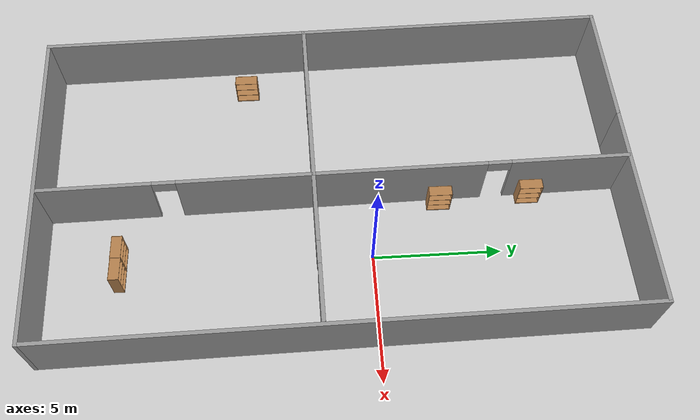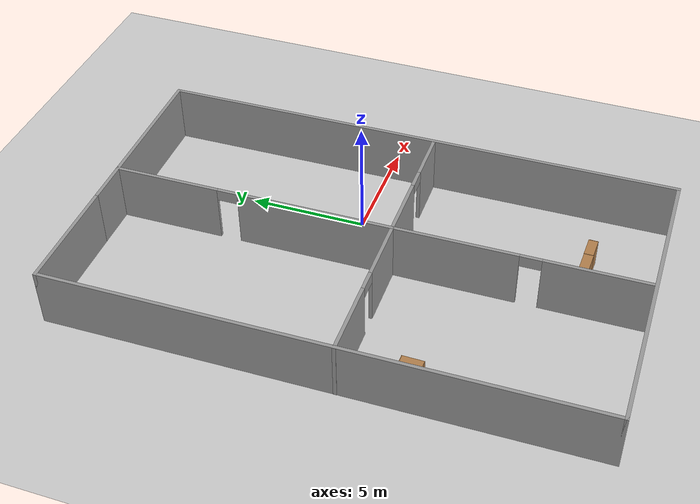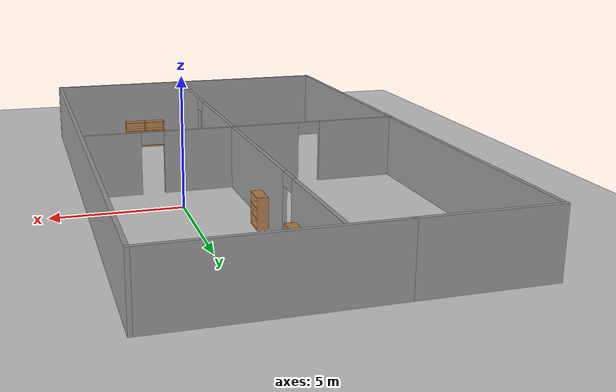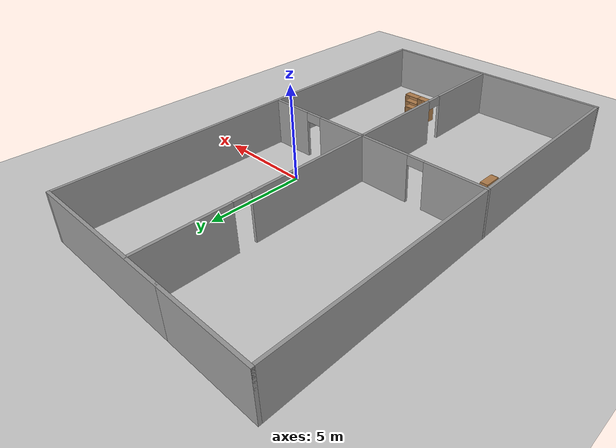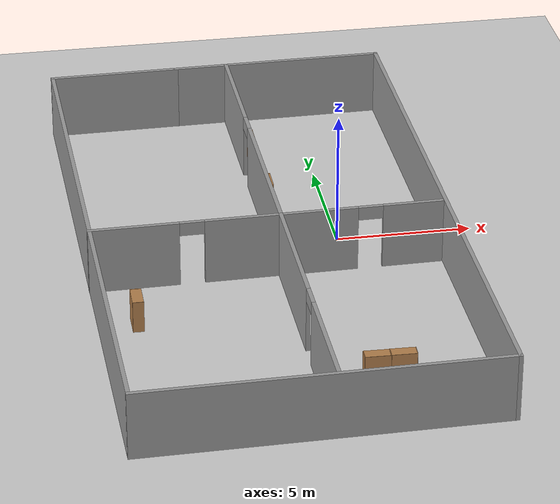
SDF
<sdf version="1.7">
 <world name="default">
  <light name="sun" type="directional">
   <pose>0 0 10 0 -0 0</pose>
   <diffuse>0.8 0.8 0.8 1</diffuse>
   <specular>0.2 0.2 0.2 1</specular>
   <attenuation>
    <range>1000</range>
    <constant>0.9</constant>
    <linear>0.01</linear>
    <quadratic>0.001</quadratic>
   </attenuation>
   <direction>-0.5 0.1 -0.9</direction>
   <spot><inner_angle>0</inner_angle><outer_angle>0</outer_angle><falloff>0</falloff></spot>
  </light>
  <model name="ground_plane">
   <static>1</static>
   <link name="link">
    <collision name="collision">
     <geometry><plane><normal>0 0 1</normal><size>100 100</size></plane></geometry>
     <surface>
      <contact><collide_bitmask>65535</collide_bitmask></contact>
      <friction><ode><mu>100</mu><mu2>50</mu2></ode></friction>
     </surface>
    </collision>
    <visual name="visual">
     <cast_shadows>0</cast_shadows>
     <geometry><plane><normal>0 0 1</normal><size>100 100</size></plane></geometry>
     <material>
      <script><uri>file://media/materials/scripts/gazebo.material</uri><name>Gazebo/Grey</name></script>
     </material>
    </visual>
   </link>
  </model>
  <gravity>0 0 -9.8</gravity>
  <magnetic_field>6e-06 2.3e-05 -4.2e-05</magnetic_field>
  <atmosphere type="adiabatic"/>
  <physics type="ode">
   <max_step_size>0.001</max_step_size>
   <real_time_factor>1</real_time_factor>
   <real_time_update_rate>1000</real_time_update_rate>
  </physics>
  <scene><ambient>0.4 0.4 0.4 1</ambient><background>0.7 0.7 0.7 1</background><shadows>1</shadows></scene>
  <spherical_coordinates>
   <surface_model>EARTH_WGS84</surface_model>
   <latitude_deg>0</latitude_deg>
   <longitude_deg>0</longitude_deg>
   <elevation>0</elevation>
   <heading_deg>0</heading_deg>
  </spherical_coordinates>
  <model name="world_test">
   <pose>-2.88552 -1.34444 0 0 0 -1.55738</pose>
   <link name="Wall_10">
    <collision name="Wall_10_Collision">
     <geometry><box><size>8.15 0.15 2.5</size></box></geometry>
     <pose>0 0 1.25 0 -0 0</pose>
    </collision>
    <visual name="Wall_10_Visual">
     <pose>0 0 1.25 0 -0 0</pose>
     <geometry><box><size>8.15 0.15 2.5</size></box></geometry>
     <material>
      <script><uri>file://media/materials/scripts/gazebo.material</uri><name>Gazebo/Grey</name></script>
      <ambient>1 1 1 1</ambient>
     </material>
     <meta><layer>0</layer></meta>
    </visual>
    <pose>-11.3 2.42918 0 0 -0 -1.5708</pose>
   </link>
   <link name="Wall_18">
    <pose>-5.24626 0.420819 0 0 -0 0</pose>
    <visual name="Wall_18_Visual_0">
     <pose>-3.81603 0 1.25 0 -0 0</pose>
     <geometry><box><size>4.61795 0.15 2.5</size></box></geometry>
     <material>
      <script><uri>file://media/materials/scripts/gazebo.material</uri><name>Gazebo/Grey</name></script>
      <ambient>1 1 1 1</ambient>
     </material>
     <meta><layer>0</layer></meta>
    </visual>
    <collision name="Wall_18_Collision_0">
     <geometry><box><size>4.61795 0.15 2.5</size></box></geometry>
     <pose>-3.81603 0 1.25 0 -0 0</pose>
    </collision>
    <visual name="Wall_18_Visual_1">
     <pose>2.75897 0 1.25 0 -0 0</pose>
     <geometry><box><size>6.73205 0.15 2.5</size></box></geometry>
     <material>
      <script><uri>file://media/materials/scripts/gazebo.material</uri><name>Gazebo/Grey</name></script>
      <ambient>1 1 1 1</ambient>
     </material>
     <meta><layer>0</layer></meta>
    </visual>
    <collision name="Wall_18_Collision_1">
     <geometry><box><size>6.73205 0.15 2.5</size></box></geometry>
     <pose>2.75897 0 1.25 0 -0 0</pose>
    </collision>
    <visual name="Wall_18_Visual_2">
     <pose>-1.05705 0 2.25 0 -0 0</pose>
     <geometry><box><size>0.9 0.15 0.5</size></box></geometry>
     <material>
      <script><uri>file://media/materials/scripts/gazebo.material</uri><name>Gazebo/Grey</name></script>
      <ambient>1 1 1 1</ambient>
     </material>
     <meta><layer>0</layer></meta>
    </visual>
    <collision name="Wall_18_Collision_2">
     <geometry><box><size>0.9 0.15 0.5</size></box></geometry>
     <pose>-1.05705 0 2.25 0 -0 0</pose>
    </collision>
   </link>
   <link name="Wall_19">
    <pose>0.803742 3.34582 0 0 -0 1.5708</pose>
    <visual name="Wall_19_Visual_0">
     <pose>-1.55911 0 1.25 0 -0 0</pose>
     <geometry><box><size>2.88178 0.15 2.5</size></box></geometry>
     <material>
      <script><uri>file://media/materials/scripts/gazebo.material</uri><name>Gazebo/Grey</name></script>
      <ambient>1 1 1 1</ambient>
     </material>
     <meta><layer>0</layer></meta>
    </visual>
    <collision name="Wall_19_Collision_0">
     <geometry><box><size>2.88178 0.15 2.5</size></box></geometry>
     <pose>-1.55911 0 1.25 0 -0 0</pose>
    </collision>
    <visual name="Wall_19_Visual_1">
     <pose>1.89089 0 1.25 0 -0 0</pose>
     <geometry><box><size>2.21822 0.15 2.5</size></box></geometry>
     <material>
      <script><uri>file://media/materials/scripts/gazebo.material</uri><name>Gazebo/Grey</name></script>
      <ambient>1 1 1 1</ambient>
     </material>
     <meta><layer>0</layer></meta>
    </visual>
    <collision name="Wall_19_Collision_1">
     <geometry><box><size>2.21822 0.15 2.5</size></box></geometry>
     <pose>1.89089 0 1.25 0 -0 0</pose>
    </collision>
    <visual name="Wall_19_Visual_2">
     <pose>0.331783 0 2.25 0 -0 0</pose>
     <geometry><box><size>0.9 0.15 0.5</size></box></geometry>
     <material>
      <script><uri>file://media/materials/scripts/gazebo.material</uri><name>Gazebo/Grey</name></script>
      <ambient>1 1 1 1</ambient>
     </material>
     <meta><layer>0</layer></meta>
    </visual>
    <collision name="Wall_19_Collision_2">
     <geometry><box><size>0.9 0.15 0.5</size></box></geometry>
     <pose>0.331783 0 2.25 0 -0 0</pose>
    </collision>
   </link>
   <link name="Wall_21">
    <pose>0.803742 -3.00418 0 0 -0 -1.5708</pose>
    <visual name="Wall_21_Visual_0">
     <pose>-2.08899 0 1.25 0 -0 0</pose>
     <geometry><box><size>2.82202 0.15 2.5</size></box></geometry>
     <material>
      <script><uri>file://media/materials/scripts/gazebo.material</uri><name>Gazebo/Grey</name></script>
      <ambient>1 1 1 1</ambient>
     </material>
     <meta><layer>0</layer></meta>
    </visual>
    <collision name="Wall_21_Collision_0">
     <geometry><box><size>2.82202 0.15 2.5</size></box></geometry>
     <pose>-2.08899 0 1.25 0 -0 0</pose>
    </collision>
    <visual name="Wall_21_Visual_1">
     <pose>1.86101 0 1.25 0 -0 0</pose>
     <geometry><box><size>3.27798 0.15 2.5</size></box></geometry>
     <material>
      <script><uri>file://media/materials/scripts/gazebo.material</uri><name>Gazebo/Grey</name></script>
      <ambient>1 1 1 1</ambient>
     </material>
     <meta><layer>0</layer></meta>
    </visual>
    <collision name="Wall_21_Collision_1">
     <geometry><box><size>3.27798 0.15 2.5</size></box></geometry>
     <pose>1.86101 0 1.25 0 -0 0</pose>
    </collision>
    <visual name="Wall_21_Visual_2">
     <pose>-0.227983 0 2.25 0 -0 0</pose>
     <geometry><box><size>0.9 0.15 0.5</size></box></geometry>
     <material>
      <script><uri>file://media/materials/scripts/gazebo.material</uri><name>Gazebo/Grey</name></script>
      <ambient>1 1 1 1</ambient>
     </material>
     <meta><layer>0</layer></meta>
    </visual>
    <collision name="Wall_21_Collision_2">
     <geometry><box><size>0.9 0.15 0.5</size></box></geometry>
     <pose>-0.227983 0 2.25 0 -0 0</pose>
    </collision>
   </link>
   <link name="Wall_23">
    <pose>5.97874 0.420819 0 0 -0 0</pose>
    <visual name="Wall_23_Visual_0">
     <pose>-2.61658 0 1.25 0 -0 0</pose>
     <geometry><box><size>5.26685 0.15 2.5</size></box></geometry>
     <material>
      <script><uri>file://media/materials/scripts/gazebo.material</uri><name>Gazebo/Grey</name></script>
      <ambient>1 1 1 1</ambient>
     </material>
     <meta><layer>0</layer></meta>
    </visual>
    <collision name="Wall_23_Collision_0">
     <geometry><box><size>5.26685 0.15 2.5</size></box></geometry>
     <pose>-2.61658 0 1.25 0 -0 0</pose>
    </collision>
    <visual name="Wall_23_Visual_1">
     <pose>3.08342 0 1.25 0 -0 0</pose>
     <geometry><box><size>4.33315 0.15 2.5</size></box></geometry>
     <material>
      <script><uri>file://media/materials/scripts/gazebo.material</uri><name>Gazebo/Grey</name></script>
      <ambient>1 1 1 1</ambient>
     </material>
     <meta><layer>0</layer></meta>
    </visual>
    <collision name="Wall_23_Collision_1">
     <geometry><box><size>4.33315 0.15 2.5</size></box></geometry>
     <pose>3.08342 0 1.25 0 -0 0</pose>
    </collision>
    <visual name="Wall_23_Visual_2">
     <pose>0.466847 0 2.25 0 -0 0</pose>
     <geometry><box><size>0.9 0.15 0.5</size></box></geometry>
     <material>
      <script><uri>file://media/materials/scripts/gazebo.material</uri><name>Gazebo/Grey</name></script>
      <ambient>1 1 1 1</ambient>
     </material>
     <meta><layer>0</layer></meta>
    </visual>
    <collision name="Wall_23_Collision_2">
     <geometry><box><size>0.9 0.15 0.5</size></box></geometry>
     <pose>0.466847 0 2.25 0 -0 0</pose>
    </collision>
   </link>
   <link name="Wall_6">
    <collision name="Wall_6_Collision">
     <geometry><box><size>5 0.15 2.5</size></box></geometry>
     <pose>0 0 1.25 0 -0 0</pose>
    </collision>
    <visual name="Wall_6_Visual">
     <pose>0 0 1.25 0 -0 0</pose>
     <geometry><box><size>5 0.15 2.5</size></box></geometry>
     <material>
      <script><uri>file://media/materials/scripts/gazebo.material</uri><name>Gazebo/Grey</name></script>
      <ambient>1 1 1 1</ambient>
     </material>
     <meta><layer>0</layer></meta>
    </visual>
    <pose>-11.3 -3.99582 0 0 -0 -1.5708</pose>
   </link>
   <link name="Wall_7">
    <collision name="Wall_7_Collision">
     <geometry><box><size>22.75 0.15 2.5</size></box></geometry>
     <pose>0 0 1.25 0 -0 0</pose>
    </collision>
    <visual name="Wall_7_Visual">
     <pose>0 0 1.25 0 -0 0</pose>
     <geometry><box><size>22.75 0.15 2.5</size></box></geometry>
     <material>
      <script><uri>file://media/materials/scripts/gazebo.material</uri><name>Gazebo/Grey</name></script>
      <ambient>1 1 1 1</ambient>
     </material>
     <meta><layer>0</layer></meta>
    </visual>
    <pose>0 -6.42082 0 0 -0 0</pose>
   </link>
   <link name="Wall_8">
    <collision name="Wall_8_Collision">
     <geometry><box><size>13 0.15 2.5</size></box></geometry>
     <pose>0 0 1.25 0 -0 0</pose>
    </collision>
    <visual name="Wall_8_Visual">
     <pose>0 0 1.25 0 -0 0</pose>
     <geometry><box><size>13 0.15 2.5</size></box></geometry>
     <material>
      <script><uri>file://media/materials/scripts/gazebo.material</uri><name>Gazebo/Grey</name></script>
      <ambient>1 1 1 1</ambient>
     </material>
     <meta><layer>0</layer></meta>
    </visual>
    <pose>11.3 0.004181 0 0 -0 1.5708</pose>
   </link>
   <link name="Wall_9">
    <collision name="Wall_9_Collision">
     <geometry><box><size>22.75 0.15 2.5</size></box></geometry>
     <pose>0 0 1.25 0 -0 0</pose>
    </collision>
    <visual name="Wall_9_Visual">
     <pose>0 0 1.25 0 -0 0</pose>
     <geometry><box><size>22.75 0.15 2.5</size></box></geometry>
     <material>
      <script><uri>file://media/materials/scripts/gazebo.material</uri><name>Gazebo/Grey</name></script>
      <ambient>1 1 1 1</ambient>
     </material>
     <meta><layer>0</layer></meta>
    </visual>
    <pose>0 6.42918 0 0 -0 3.14159</pose>
   </link>
   <static>1</static>
  </model>
  <model name="bookshelf">
   <static>1</static>
   <link name="link">
    <inertial><mass>1</mass></inertial>
    <collision name="back">
     <pose>0 0.005 0.6 0 -0 0</pose>
     <geometry><box><size>0.9 0.01 1.2</size></box></geometry>
    </collision>
    <visual name="visual1">
     <pose>0 0.005 0.6 0 -0 0</pose>
     <geometry><box><size>0.9 0.01 1.2</size></box></geometry>
     <material>
      <script><uri>file://media/materials/scripts/gazebo.material</uri><name>Gazebo/Wood</name></script>
     </material>
    </visual>
    <collision name="left_side">
     <pose>0.45 -0.195 0.6 0 -0 0</pose>
     <geometry><box><size>0.02 0.4 1.2</size></box></geometry>
    </collision>
    <visual name="visual2">
     <pose>0.45 -0.195 0.6 0 -0 0</pose>
     <geometry><box><size>0.02 0.4 1.2</size></box></geometry>
     <material>
      <script><uri>file://media/materials/scripts/gazebo.material</uri><name>Gazebo/Wood</name></script>
     </material>
    </visual>
    <collision name="right_side">
     <pose>-0.45 -0.195 0.6 0 -0 0</pose>
     <geometry><box><size>0.02 0.4 1.2</size></box></geometry>
    </collision>
    <visual name="visual3">
     <pose>-0.45 -0.195 0.6 0 -0 0</pose>
     <geometry><box><size>0.02 0.4 1.2</size></box></geometry>
     <material>
      <script><uri>file://media/materials/scripts/gazebo.material</uri><name>Gazebo/Wood</name></script>
     </material>
    </visual>
    <collision name="bottom">
     <pose>0 -0.195 0.03 0 -0 0</pose>
     <geometry><box><size>0.88 0.4 0.06</size></box></geometry>
    </collision>
    <visual name="visual4">
     <pose>0 -0.195 0.03 0 -0 0</pose>
     <geometry><box><size>0.88 0.4 0.06</size></box></geometry>
     <material>
      <script><uri>file://media/materials/scripts/gazebo.material</uri><name>Gazebo/Wood</name></script>
     </material>
    </visual>
    <collision name="top">
     <pose>0 -0.195 1.19 0 -0 0</pose>
     <geometry><box><size>0.88 0.4 0.02</size></box></geometry>
    </collision>
    <visual name="visual5">
     <pose>0 -0.195 1.19 0 -0 0</pose>
     <geometry><box><size>0.88 0.4 0.02</size></box></geometry>
     <material>
      <script><uri>file://media/materials/scripts/gazebo.material</uri><name>Gazebo/Wood</name></script>
     </material>
    </visual>
    <collision name="low_shelf">
     <pose>0 -0.195 0.43 0 -0 0</pose>
     <geometry><box><size>0.88 0.4 0.02</size></box></geometry>
    </collision>
    <visual name="visual6">
     <pose>0 -0.195 0.43 0 -0 0</pose>
     <geometry><box><size>0.88 0.4 0.02</size></box></geometry>
     <material>
      <script><uri>file://media/materials/scripts/gazebo.material</uri><name>Gazebo/Wood</name></script>
     </material>
    </visual>
    <collision name="high_shelf">
     <pose>0 -0.195 0.8 0 -0 0</pose>
     <geometry><box><size>0.88 0.4 0.02</size></box></geometry>
    </collision>
    <visual name="visual7">
     <pose>0 -0.195 0.8 0 -0 0</pose>
     <geometry><box><size>0.88 0.4 0.02</size></box></geometry>
     <material>
      <script><uri>file://media/materials/scripts/gazebo.material</uri><name>Gazebo/Wood</name></script>
     </material>
    </visual>
   </link>
   <pose>-2.36099 2.78032 0 0 -0 1.56146</pose>
  </model>
  <model name="bookshelf_clone">
   <static>1</static>
   <link name="link">
    <inertial><mass>1</mass></inertial>
    <collision name="back">
     <pose>0 0.005 0.6 0 -0 0</pose>
     <geometry><box><size>0.9 0.01 1.2</size></box></geometry>
    </collision>
    <visual name="visual1">
     <pose>0 0.005 0.6 0 -0 0</pose>
     <geometry><box><size>0.9 0.01 1.2</size></box></geometry>
     <material>
      <script><uri>file://media/materials/scripts/gazebo.material</uri><name>Gazebo/Wood</name></script>
     </material>
    </visual>
    <collision name="left_side">
     <pose>0.45 -0.195 0.6 0 -0 0</pose>
     <geometry><box><size>0.02 0.4 1.2</size></box></geometry>
    </collision>
    <visual name="visual2">
     <pose>0.45 -0.195 0.6 0 -0 0</pose>
     <geometry><box><size>0.02 0.4 1.2</size></box></geometry>
     <material>
      <script><uri>file://media/materials/scripts/gazebo.material</uri><name>Gazebo/Wood</name></script>
     </material>
    </visual>
    <collision name="right_side">
     <pose>-0.45 -0.195 0.6 0 -0 0</pose>
     <geometry><box><size>0.02 0.4 1.2</size></box></geometry>
    </collision>
    <visual name="visual3">
     <pose>-0.45 -0.195 0.6 0 -0 0</pose>
     <geometry><box><size>0.02 0.4 1.2</size></box></geometry>
     <material>
      <script><uri>file://media/materials/scripts/gazebo.material</uri><name>Gazebo/Wood</name></script>
     </material>
    </visual>
    <collision name="bottom">
     <pose>0 -0.195 0.03 0 -0 0</pose>
     <geometry><box><size>0.88 0.4 0.06</size></box></geometry>
    </collision>
    <visual name="visual4">
     <pose>0 -0.195 0.03 0 -0 0</pose>
     <geometry><box><size>0.88 0.4 0.06</size></box></geometry>
     <material>
      <script><uri>file://media/materials/scripts/gazebo.material</uri><name>Gazebo/Wood</name></script>
     </material>
    </visual>
    <collision name="top">
     <pose>0 -0.195 1.19 0 -0 0</pose>
     <geometry><box><size>0.88 0.4 0.02</size></box></geometry>
    </collision>
    <visual name="visual5">
     <pose>0 -0.195 1.19 0 -0 0</pose>
     <geometry><box><size>0.88 0.4 0.02</size></box></geometry>
     <material>
      <script><uri>file://media/materials/scripts/gazebo.material</uri><name>Gazebo/Wood</name></script>
     </material>
    </visual>
    <collision name="low_shelf">
     <pose>0 -0.195 0.43 0 -0 0</pose>
     <geometry><box><size>0.88 0.4 0.02</size></box></geometry>
    </collision>
    <visual name="visual6">
     <pose>0 -0.195 0.43 0 -0 0</pose>
     <geometry><box><size>0.88 0.4 0.02</size></box></geometry>
     <material>
      <script><uri>file://media/materials/scripts/gazebo.material</uri><name>Gazebo/Wood</name></script>
     </material>
    </visual>
    <collision name="high_shelf">
     <pose>0 -0.195 0.8 0 -0 0</pose>
     <geometry><box><size>0.88 0.4 0.02</size></box></geometry>
    </collision>
    <visual name="visual7">
     <pose>0 -0.195 0.8 0 -0 0</pose>
     <geometry><box><size>0.88 0.4 0.02</size></box></geometry>
     <material>
      <script><uri>file://media/materials/scripts/gazebo.material</uri><name>Gazebo/Wood</name></script>
     </material>
    </visual>
   </link>
   <pose>-2.46567 6.36199 0 0 -0 1.56146</pose>
  </model>
  <model name="bookshelf_clone_0">
   <static>1</static>
   <link name="link">
    <inertial><mass>1</mass></inertial>
    <collision name="back">
     <pose>0 0.005 0.6 0 -0 0</pose>
     <geometry><box><size>0.9 0.01 1.2</size></box></geometry>
    </collision>
    <visual name="visual1">
     <pose>0 0.005 0.6 0 -0 0</pose>
     <geometry><box><size>0.9 0.01 1.2</size></box></geometry>
     <material>
      <script><uri>file://media/materials/scripts/gazebo.material</uri><name>Gazebo/Wood</name></script>
     </material>
    </visual>
    <collision name="left_side">
     <pose>0.45 -0.195 0.6 0 -0 0</pose>
     <geometry><box><size>0.02 0.4 1.2</size></box></geometry>
    </collision>
    <visual name="visual2">
     <pose>0.45 -0.195 0.6 0 -0 0</pose>
     <geometry><box><size>0.02 0.4 1.2</size></box></geometry>
     <material>
      <script><uri>file://media/materials/scripts/gazebo.material</uri><name>Gazebo/Wood</name></script>
     </material>
    </visual>
    <collision name="right_side">
     <pose>-0.45 -0.195 0.6 0 -0 0</pose>
     <geometry><box><size>0.02 0.4 1.2</size></box></geometry>
    </collision>
    <visual name="visual3">
     <pose>-0.45 -0.195 0.6 0 -0 0</pose>
     <geometry><box><size>0.02 0.4 1.2</size></box></geometry>
     <material>
      <script><uri>file://media/materials/scripts/gazebo.material</uri><name>Gazebo/Wood</name></script>
     </material>
    </visual>
    <collision name="bottom">
     <pose>0 -0.195 0.03 0 -0 0</pose>
     <geometry><box><size>0.88 0.4 0.06</size></box></geometry>
    </collision>
    <visual name="visual4">
     <pose>0 -0.195 0.03 0 -0 0</pose>
     <geometry><box><size>0.88 0.4 0.06</size></box></geometry>
     <material>
      <script><uri>file://media/materials/scripts/gazebo.material</uri><name>Gazebo/Wood</name></script>
     </material>
    </visual>
    <collision name="top">
     <pose>0 -0.195 1.19 0 -0 0</pose>
     <geometry><box><size>0.88 0.4 0.02</size></box></geometry>
    </collision>
    <visual name="visual5">
     <pose>0 -0.195 1.19 0 -0 0</pose>
     <geometry><box><size>0.88 0.4 0.02</size></box></geometry>
     <material>
      <script><uri>file://media/materials/scripts/gazebo.material</uri><name>Gazebo/Wood</name></script>
     </material>
    </visual>
    <collision name="low_shelf">
     <pose>0 -0.195 0.43 0 -0 0</pose>
     <geometry><box><size>0.88 0.4 0.02</size></box></geometry>
    </collision>
    <visual name="visual6">
     <pose>0 -0.195 0.43 0 -0 0</pose>
     <geometry><box><size>0.88 0.4 0.02</size></box></geometry>
     <material>
      <script><uri>file://media/materials/scripts/gazebo.material</uri><name>Gazebo/Wood</name></script>
     </material>
    </visual>
    <collision name="high_shelf">
     <pose>0 -0.195 0.8 0 -0 0</pose>
     <geometry><box><size>0.88 0.4 0.02</size></box></geometry>
    </collision>
    <visual name="visual7">
     <pose>0 -0.195 0.8 0 -0 0</pose>
     <geometry><box><size>0.88 0.4 0.02</size></box></geometry>
     <material>
      <script><uri>file://media/materials/scripts/gazebo.material</uri><name>Gazebo/Wood</name></script>
     </material>
    </visual>
   </link>
   <pose>-0.458635 -9.89941 0 0 -0 3.11556</pose>
  </model>
  <model name="bookshelf_clone_1">
   <static>1</static>
   <link name="link">
    <inertial><mass>1</mass></inertial>
    <collision name="back">
     <pose>0 0.005 0.6 0 -0 0</pose>
     <geometry><box><size>0.9 0.01 1.2</size></box></geometry>
    </collision>
    <visual name="visual1">
     <pose>0 0.005 0.6 0 -0 0</pose>
     <geometry><box><size>0.9 0.01 1.2</size></box></geometry>
     <material>
      <script><uri>file://media/materials/scripts/gazebo.material</uri><name>Gazebo/Wood</name></script>
     </material>
    </visual>
    <collision name="left_side">
     <pose>0.45 -0.195 0.6 0 -0 0</pose>
     <geometry><box><size>0.02 0.4 1.2</size></box></geometry>
    </collision>
    <visual name="visual2">
     <pose>0.45 -0.195 0.6 0 -0 0</pose>
     <geometry><box><size>0.02 0.4 1.2</size></box></geometry>
     <material>
      <script><uri>file://media/materials/scripts/gazebo.material</uri><name>Gazebo/Wood</name></script>
     </material>
    </visual>
    <collision name="right_side">
     <pose>-0.45 -0.195 0.6 0 -0 0</pose>
     <geometry><box><size>0.02 0.4 1.2</size></box></geometry>
    </collision>
    <visual name="visual3">
     <pose>-0.45 -0.195 0.6 0 -0 0</pose>
     <geometry><box><size>0.02 0.4 1.2</size></box></geometry>
     <material>
      <script><uri>file://media/materials/scripts/gazebo.material</uri><name>Gazebo/Wood</name></script>
     </material>
    </visual>
    <collision name="bottom">
     <pose>0 -0.195 0.03 0 -0 0</pose>
     <geometry><box><size>0.88 0.4 0.06</size></box></geometry>
    </collision>
    <visual name="visual4">
     <pose>0 -0.195 0.03 0 -0 0</pose>
     <geometry><box><size>0.88 0.4 0.06</size></box></geometry>
     <material>
      <script><uri>file://media/materials/scripts/gazebo.material</uri><name>Gazebo/Wood</name></script>
     </material>
    </visual>
    <collision name="top">
     <pose>0 -0.195 1.19 0 -0 0</pose>
     <geometry><box><size>0.88 0.4 0.02</size></box></geometry>
    </collision>
    <visual name="visual5">
     <pose>0 -0.195 1.19 0 -0 0</pose>
     <geometry><box><size>0.88 0.4 0.02</size></box></geometry>
     <material>
      <script><uri>file://media/materials/scripts/gazebo.material</uri><name>Gazebo/Wood</name></script>
     </material>
    </visual>
    <collision name="low_shelf">
     <pose>0 -0.195 0.43 0 -0 0</pose>
     <geometry><box><size>0.88 0.4 0.02</size></box></geometry>
    </collision>
    <visual name="visual6">
     <pose>0 -0.195 0.43 0 -0 0</pose>
     <geometry><box><size>0.88 0.4 0.02</size></box></geometry>
     <material>
      <script><uri>file://media/materials/scripts/gazebo.material</uri><name>Gazebo/Wood</name></script>
     </material>
    </visual>
    <collision name="high_shelf">
     <pose>0 -0.195 0.8 0 -0 0</pose>
     <geometry><box><size>0.88 0.4 0.02</size></box></geometry>
    </collision>
    <visual name="visual7">
     <pose>0 -0.195 0.8 0 -0 0</pose>
     <geometry><box><size>0.88 0.4 0.02</size></box></geometry>
     <material>
      <script><uri>file://media/materials/scripts/gazebo.material</uri><name>Gazebo/Wood</name></script>
     </material>
    </visual>
   </link>
   <pose>-8.13973 -4.73585 0 0 -0 1.56146</pose>
  </model>
  <model name="bookshelf_clone_0_clone">
   <static>1</static>
   <link name="link">
    <inertial><mass>1</mass></inertial>
    <collision name="back">
     <pose>0 0.005 0.6 0 -0 0</pose>
     <geometry><box><size>0.9 0.01 1.2</size></box></geometry>
    </collision>
    <visual name="visual1">
     <pose>0 0.005 0.6 0 -0 0</pose>
     <geometry><box><size>0.9 0.01 1.2</size></box></geometry>
     <material>
      <script><uri>file://media/materials/scripts/gazebo.material</uri><name>Gazebo/Wood</name></script>
     </material>
    </visual>
    <collision name="left_side">
     <pose>0.45 -0.195 0.6 0 -0 0</pose>
     <geometry><box><size>0.02 0.4 1.2</size></box></geometry>
    </collision>
    <visual name="visual2">
     <pose>0.45 -0.195 0.6 0 -0 0</pose>
     <geometry><box><size>0.02 0.4 1.2</size></box></geometry>
     <material>
      <script><uri>file://media/materials/scripts/gazebo.material</uri><name>Gazebo/Wood</name></script>
     </material>
    </visual>
    <collision name="right_side">
     <pose>-0.45 -0.195 0.6 0 -0 0</pose>
     <geometry><box><size>0.02 0.4 1.2</size></box></geometry>
    </collision>
    <visual name="visual3">
     <pose>-0.45 -0.195 0.6 0 -0 0</pose>
     <geometry><box><size>0.02 0.4 1.2</size></box></geometry>
     <material>
      <script><uri>file://media/materials/scripts/gazebo.material</uri><name>Gazebo/Wood</name></script>
     </material>
    </visual>
    <collision name="bottom">
     <pose>0 -0.195 0.03 0 -0 0</pose>
     <geometry><box><size>0.88 0.4 0.06</size></box></geometry>
    </collision>
    <visual name="visual4">
     <pose>0 -0.195 0.03 0 -0 0</pose>
     <geometry><box><size>0.88 0.4 0.06</size></box></geometry>
     <material>
      <script><uri>file://media/materials/scripts/gazebo.material</uri><name>Gazebo/Wood</name></script>
     </material>
    </visual>
    <collision name="top">
     <pose>0 -0.195 1.19 0 -0 0</pose>
     <geometry><box><size>0.88 0.4 0.02</size></box></geometry>
    </collision>
    <visual name="visual5">
     <pose>0 -0.195 1.19 0 -0 0</pose>
     <geometry><box><size>0.88 0.4 0.02</size></box></geometry>
     <material>
      <script><uri>file://media/materials/scripts/gazebo.material</uri><name>Gazebo/Wood</name></script>
     </material>
    </visual>
    <collision name="low_shelf">
     <pose>0 -0.195 0.43 0 -0 0</pose>
     <geometry><box><size>0.88 0.4 0.02</size></box></geometry>
    </collision>
    <visual name="visual6">
     <pose>0 -0.195 0.43 0 -0 0</pose>
     <geometry><box><size>0.88 0.4 0.02</size></box></geometry>
     <material>
      <script><uri>file://media/materials/scripts/gazebo.material</uri><name>Gazebo/Wood</name></script>
     </material>
    </visual>
    <collision name="high_shelf">
     <pose>0 -0.195 0.8 0 -0 0</pose>
     <geometry><box><size>0.88 0.4 0.02</size></box></geometry>
    </collision>
    <visual name="visual7">
     <pose>0 -0.195 0.8 0 -0 0</pose>
     <geometry><box><size>0.88 0.4 0.02</size></box></geometry>
     <material>
      <script><uri>file://media/materials/scripts/gazebo.material</uri><name>Gazebo/Wood</name></script>
     </material>
    </visual>
   </link>
   <pose>0.433239 -9.9128 0 0 -0 3.11556</pose>
  </model>
 </world>
</sdf>
